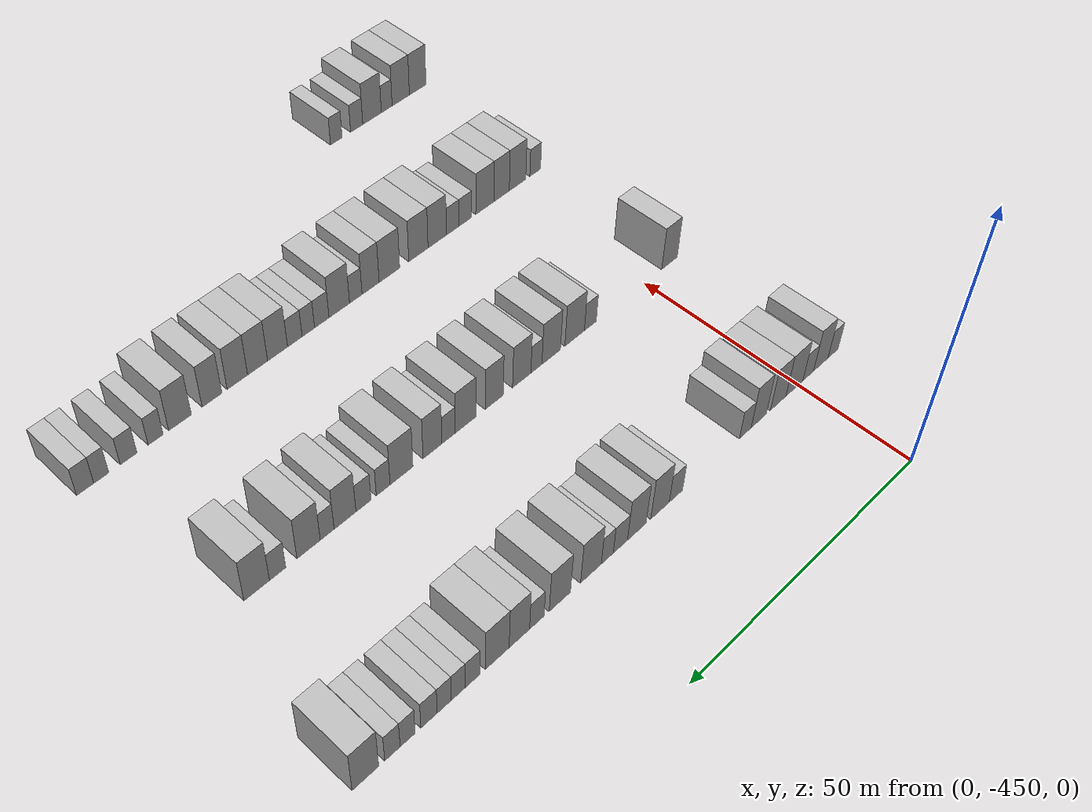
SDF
<sdf version="1.6">
 <world name="default">
  <model name="building_1">
   <static>1</static>
   <pose>25.0000 -458.7066 0 0.000000 0.000000 0.000000</pose>
   <link name="link">
    <pose>0 0 3.00 0 0 0</pose>
    <collision name="collision"><geometry><box><size>10.0000 2.5868 6.0000</size></box></geometry></collision>
    <visual name="visual">
     <cast_shadows>0</cast_shadows>
     <geometry><box><size>10.0000 2.5868 6.0000</size></box></geometry>
     <material>
      <script>
       <uri>model://HANNAS_wall/materials/scripts</uri>
       <uri>model://HANNAS_wall/materials/textures</uri>
       <name>vrc/HANNAS_wall</name>
      </script>
     </material>
    </visual>
   </link>
  </model>
  <model name="building_2">
   <static>1</static>
   <pose>25.0000 -455.5738 0 0.000000 0.000000 0.000000</pose>
   <link name="link">
    <pose>0 0 4.50 0 0 0</pose>
    <collision name="collision"><geometry><box><size>10.0000 3.6787 9.0000</size></box></geometry></collision>
    <visual name="visual">
     <cast_shadows>0</cast_shadows>
     <geometry><box><size>10.0000 3.6787 9.0000</size></box></geometry>
     <material>
      <script>
       <uri>model://HANNAS_wall/materials/scripts</uri>
       <uri>model://HANNAS_wall/materials/textures</uri>
       <name>vrc/HANNAS_wall</name>
      </script>
     </material>
    </visual>
   </link>
  </model>
  <model name="building_3">
   <static>1</static>
   <pose>25.0000 -452.3858 0 0.000000 0.000000 0.000000</pose>
   <link name="link">
    <pose>0 0 3.00 0 0 0</pose>
    <collision name="collision"><geometry><box><size>10.0000 2.6974 6.0000</size></box></geometry></collision>
    <visual name="visual">
     <cast_shadows>0</cast_shadows>
     <geometry><box><size>10.0000 2.6974 6.0000</size></box></geometry>
     <material>
      <script>
       <uri>model://HANNAS_wall/materials/scripts</uri>
       <uri>model://HANNAS_wall/materials/textures</uri>
       <name>vrc/HANNAS_wall</name>
      </script>
     </material>
    </visual>
   </link>
  </model>
  <model name="building_4">
   <static>1</static>
   <pose>25.0000 -448.9514 0 0.000000 0.000000 0.000000</pose>
   <link name="link">
    <pose>0 0 4.50 0 0 0</pose>
    <collision name="collision"><geometry><box><size>10.0000 4.1713 9.0000</size></box></geometry></collision>
    <visual name="visual">
     <cast_shadows>0</cast_shadows>
     <geometry><box><size>10.0000 4.1713 9.0000</size></box></geometry>
     <material>
      <script>
       <uri>model://HANNAS_wall/materials/scripts</uri>
       <uri>model://HANNAS_wall/materials/textures</uri>
       <name>vrc/HANNAS_wall</name>
      </script>
     </material>
    </visual>
   </link>
  </model>
  <model name="building_5">
   <static>1</static>
   <pose>25.0000 -444.9981 0 0.000000 0.000000 0.000000</pose>
   <link name="link">
    <pose>0 0 4.50 0 0 0</pose>
    <collision name="collision"><geometry><box><size>10.0000 3.7355 9.0000</size></box></geometry></collision>
    <visual name="visual">
     <cast_shadows>0</cast_shadows>
     <geometry><box><size>10.0000 3.7355 9.0000</size></box></geometry>
     <material>
      <script>
       <uri>model://HANNAS_wall/materials/scripts</uri>
       <uri>model://HANNAS_wall/materials/textures</uri>
       <name>vrc/HANNAS_wall</name>
      </script>
     </material>
    </visual>
   </link>
  </model>
  <model name="building_6">
   <static>1</static>
   <pose>25.0000 -440.3303 0 0.000000 0.000000 0.000000</pose>
   <link name="link">
    <pose>0 0 4.50 0 0 0</pose>
    <collision name="collision"><geometry><box><size>10.0000 3.6001 9.0000</size></box></geometry></collision>
    <visual name="visual">
     <cast_shadows>0</cast_shadows>
     <geometry><box><size>10.0000 3.6001 9.0000</size></box></geometry>
     <material>
      <script>
       <uri>model://HANNAS_wall/materials/scripts</uri>
       <uri>model://HANNAS_wall/materials/textures</uri>
       <name>vrc/HANNAS_wall</name>
      </script>
     </material>
    </visual>
   </link>
  </model>
  <model name="building_7">
   <static>1</static>
   <pose>25.0000 -437.1537 0 0.000000 0.000000 0.000000</pose>
   <link name="link">
    <pose>0 0 3.00 0 0 0</pose>
    <collision name="collision"><geometry><box><size>10.0000 2.7531 6.0000</size></box></geometry></collision>
    <visual name="visual">
     <cast_shadows>0</cast_shadows>
     <geometry><box><size>10.0000 2.7531 6.0000</size></box></geometry>
     <material>
      <script>
       <uri>model://HANNAS_wall/materials/scripts</uri>
       <uri>model://HANNAS_wall/materials/textures</uri>
       <name>vrc/HANNAS_wall</name>
      </script>
     </material>
    </visual>
   </link>
  </model>
  <model name="building_8">
   <static>1</static>
   <pose>25.0000 -421.3944 0 0.000000 0.000000 0.000000</pose>
   <link name="link">
    <pose>0 0 3.00 0 0 0</pose>
    <collision name="collision"><geometry><box><size>10.0000 2.9219 6.0000</size></box></geometry></collision>
    <visual name="visual">
     <cast_shadows>0</cast_shadows>
     <geometry><box><size>10.0000 2.9219 6.0000</size></box></geometry>
     <material>
      <script>
       <uri>model://HANNAS_wall/materials/scripts</uri>
       <uri>model://HANNAS_wall/materials/textures</uri>
       <name>vrc/HANNAS_wall</name>
      </script>
     </material>
    </visual>
   </link>
  </model>
  <model name="building_9">
   <static>1</static>
   <pose>25.0000 -417.9384 0 0.000000 0.000000 0.000000</pose>
   <link name="link">
    <pose>0 0 4.50 0 0 0</pose>
    <collision name="collision"><geometry><box><size>10.0000 3.9902 9.0000</size></box></geometry></collision>
    <visual name="visual">
     <cast_shadows>0</cast_shadows>
     <geometry><box><size>10.0000 3.9902 9.0000</size></box></geometry>
     <material>
      <script>
       <uri>model://HANNAS_wall/materials/scripts</uri>
       <uri>model://HANNAS_wall/materials/textures</uri>
       <name>vrc/HANNAS_wall</name>
      </script>
     </material>
    </visual>
   </link>
  </model>
  <model name="building_10">
   <static>1</static>
   <pose>25.0000 -412.9769 0 0.000000 0.000000 0.000000</pose>
   <link name="link">
    <pose>0 0 4.50 0 0 0</pose>
    <collision name="collision"><geometry><box><size>10.0000 3.9328 9.0000</size></box></geometry></collision>
    <visual name="visual">
     <cast_shadows>0</cast_shadows>
     <geometry><box><size>10.0000 3.9328 9.0000</size></box></geometry>
     <material>
      <script>
       <uri>model://HANNAS_wall/materials/scripts</uri>
       <uri>model://HANNAS_wall/materials/textures</uri>
       <name>vrc/HANNAS_wall</name>
      </script>
     </material>
    </visual>
   </link>
  </model>
  <model name="building_11">
   <static>1</static>
   <pose>25.0000 -409.5305 0 0.000000 0.000000 0.000000</pose>
   <link name="link">
    <pose>0 0 3.00 0 0 0</pose>
    <collision name="collision"><geometry><box><size>10.0000 2.9600 6.0000</size></box></geometry></collision>
    <visual name="visual">
     <cast_shadows>0</cast_shadows>
     <geometry><box><size>10.0000 2.9600 6.0000</size></box></geometry>
     <material>
      <script>
       <uri>model://HANNAS_wall/materials/scripts</uri>
       <uri>model://HANNAS_wall/materials/textures</uri>
       <name>vrc/HANNAS_wall</name>
      </script>
     </material>
    </visual>
   </link>
  </model>
  <model name="building_12">
   <static>1</static>
   <pose>25.0000 -406.8182 0 0.000000 0.000000 0.000000</pose>
   <link name="link">
    <pose>0 0 3.00 0 0 0</pose>
    <collision name="collision"><geometry><box><size>10.0000 2.4644 6.0000</size></box></geometry></collision>
    <visual name="visual">
     <cast_shadows>0</cast_shadows>
     <geometry><box><size>10.0000 2.4644 6.0000</size></box></geometry>
     <material>
      <script>
       <uri>model://HANNAS_wall/materials/scripts</uri>
       <uri>model://HANNAS_wall/materials/textures</uri>
       <name>vrc/HANNAS_wall</name>
      </script>
     </material>
    </visual>
   </link>
  </model>
  <model name="building_13">
   <static>1</static>
   <pose>25.0000 -403.4928 0 0.000000 0.000000 0.000000</pose>
   <link name="link">
    <pose>0 0 4.50 0 0 0</pose>
    <collision name="collision"><geometry><box><size>10.0000 4.1865 9.0000</size></box></geometry></collision>
    <visual name="visual">
     <cast_shadows>0</cast_shadows>
     <geometry><box><size>10.0000 4.1865 9.0000</size></box></geometry>
     <material>
      <script>
       <uri>model://HANNAS_wall/materials/scripts</uri>
       <uri>model://HANNAS_wall/materials/textures</uri>
       <name>vrc/HANNAS_wall</name>
      </script>
     </material>
    </visual>
   </link>
  </model>
  <model name="building_14">
   <static>1</static>
   <pose>25.0000 -397.3032 0 0.000000 0.000000 0.000000</pose>
   <link name="link">
    <pose>0 0 4.50 0 0 0</pose>
    <collision name="collision"><geometry><box><size>10.0000 4.1926 9.0000</size></box></geometry></collision>
    <visual name="visual">
     <cast_shadows>0</cast_shadows>
     <geometry><box><size>10.0000 4.1926 9.0000</size></box></geometry>
     <material>
      <script>
       <uri>model://HANNAS_wall/materials/scripts</uri>
       <uri>model://HANNAS_wall/materials/textures</uri>
       <name>vrc/HANNAS_wall</name>
      </script>
     </material>
    </visual>
   </link>
  </model>
  <model name="building_15">
   <static>1</static>
   <pose>25.0000 -392.8134 0 0.000000 0.000000 0.000000</pose>
   <link name="link">
    <pose>0 0 3.00 0 0 0</pose>
    <collision name="collision"><geometry><box><size>10.0000 2.7870 6.0000</size></box></geometry></collision>
    <visual name="visual">
     <cast_shadows>0</cast_shadows>
     <geometry><box><size>10.0000 2.7870 6.0000</size></box></geometry>
     <material>
      <script>
       <uri>model://HANNAS_wall/materials/scripts</uri>
       <uri>model://HANNAS_wall/materials/textures</uri>
       <name>vrc/HANNAS_wall</name>
      </script>
     </material>
    </visual>
   </link>
  </model>
  <model name="building_16">
   <static>1</static>
   <pose>25.0000 -389.4823 0 0.000000 0.000000 0.000000</pose>
   <link name="link">
    <pose>0 0 4.50 0 0 0</pose>
    <collision name="collision"><geometry><box><size>10.0000 3.8753 9.0000</size></box></geometry></collision>
    <visual name="visual">
     <cast_shadows>0</cast_shadows>
     <geometry><box><size>10.0000 3.8753 9.0000</size></box></geometry>
     <material>
      <script>
       <uri>model://HANNAS_wall/materials/scripts</uri>
       <uri>model://HANNAS_wall/materials/textures</uri>
       <name>vrc/HANNAS_wall</name>
      </script>
     </material>
    </visual>
   </link>
  </model>
  <model name="building_17">
   <static>1</static>
   <pose>25.0000 -385.3470 0 0.000000 0.000000 0.000000</pose>
   <link name="link">
    <pose>0 0 4.50 0 0 0</pose>
    <collision name="collision"><geometry><box><size>10.0000 4.3953 9.0000</size></box></geometry></collision>
    <visual name="visual">
     <cast_shadows>0</cast_shadows>
     <geometry><box><size>10.0000 4.3953 9.0000</size></box></geometry>
     <material>
      <script>
       <uri>model://HANNAS_wall/materials/scripts</uri>
       <uri>model://HANNAS_wall/materials/textures</uri>
       <name>vrc/HANNAS_wall</name>
      </script>
     </material>
    </visual>
   </link>
  </model>
  <model name="building_18">
   <static>1</static>
   <pose>25.0000 -380.8037 0 0.000000 0.000000 0.000000</pose>
   <link name="link">
    <pose>0 0 3.00 0 0 0</pose>
    <collision name="collision"><geometry><box><size>10.0000 2.6913 6.0000</size></box></geometry></collision>
    <visual name="visual">
     <cast_shadows>0</cast_shadows>
     <geometry><box><size>10.0000 2.6913 6.0000</size></box></geometry>
     <material>
      <script>
       <uri>model://HANNAS_wall/materials/scripts</uri>
       <uri>model://HANNAS_wall/materials/textures</uri>
       <name>vrc/HANNAS_wall</name>
      </script>
     </material>
    </visual>
   </link>
  </model>
  <model name="building_19">
   <static>1</static>
   <pose>25.0000 -378.2091 0 0.000000 0.000000 0.000000</pose>
   <link name="link">
    <pose>0 0 3.00 0 0 0</pose>
    <collision name="collision"><geometry><box><size>10.0000 2.4979 6.0000</size></box></geometry></collision>
    <visual name="visual">
     <cast_shadows>0</cast_shadows>
     <geometry><box><size>10.0000 2.4979 6.0000</size></box></geometry>
     <material>
      <script>
       <uri>model://HANNAS_wall/materials/scripts</uri>
       <uri>model://HANNAS_wall/materials/textures</uri>
       <name>vrc/HANNAS_wall</name>
      </script>
     </material>
    </visual>
   </link>
  </model>
  <model name="building_20">
   <static>1</static>
   <pose>25.0000 -375.7072 0 0.000000 0.000000 0.000000</pose>
   <link name="link">
    <pose>0 0 3.00 0 0 0</pose>
    <collision name="collision"><geometry><box><size>10.0000 2.5059 6.0000</size></box></geometry></collision>
    <visual name="visual">
     <cast_shadows>0</cast_shadows>
     <geometry><box><size>10.0000 2.5059 6.0000</size></box></geometry>
     <material>
      <script>
       <uri>model://HANNAS_wall/materials/scripts</uri>
       <uri>model://HANNAS_wall/materials/textures</uri>
       <name>vrc/HANNAS_wall</name>
      </script>
     </material>
    </visual>
   </link>
  </model>
  <model name="building_21">
   <static>1</static>
   <pose>25.0000 -373.0271 0 0.000000 0.000000 0.000000</pose>
   <link name="link">
    <pose>0 0 3.00 0 0 0</pose>
    <collision name="collision"><geometry><box><size>10.0000 2.8543 6.0000</size></box></geometry></collision>
    <visual name="visual">
     <cast_shadows>0</cast_shadows>
     <geometry><box><size>10.0000 2.8543 6.0000</size></box></geometry>
     <material>
      <script>
       <uri>model://HANNAS_wall/materials/scripts</uri>
       <uri>model://HANNAS_wall/materials/textures</uri>
       <name>vrc/HANNAS_wall</name>
      </script>
     </material>
    </visual>
   </link>
  </model>
  <model name="building_22">
   <static>1</static>
   <pose>25.0000 -369.3233 0 0.000000 0.000000 0.000000</pose>
   <link name="link">
    <pose>0 0 3.00 0 0 0</pose>
    <collision name="collision"><geometry><box><size>10.0000 2.5532 6.0000</size></box></geometry></collision>
    <visual name="visual">
     <cast_shadows>0</cast_shadows>
     <geometry><box><size>10.0000 2.5532 6.0000</size></box></geometry>
     <material>
      <script>
       <uri>model://HANNAS_wall/materials/scripts</uri>
       <uri>model://HANNAS_wall/materials/textures</uri>
       <name>vrc/HANNAS_wall</name>
      </script>
     </material>
    </visual>
   </link>
  </model>
  <model name="building_23">
   <static>1</static>
   <pose>25.0000 -366.7375 0 0.000000 0.000000 0.000000</pose>
   <link name="link">
    <pose>0 0 3.00 0 0 0</pose>
    <collision name="collision"><geometry><box><size>10.0000 2.6186 6.0000</size></box></geometry></collision>
    <visual name="visual">
     <cast_shadows>0</cast_shadows>
     <geometry><box><size>10.0000 2.6186 6.0000</size></box></geometry>
     <material>
      <script>
       <uri>model://HANNAS_wall/materials/scripts</uri>
       <uri>model://HANNAS_wall/materials/textures</uri>
       <name>vrc/HANNAS_wall</name>
      </script>
     </material>
    </visual>
   </link>
  </model>
  <model name="building_24">
   <static>1</static>
   <pose>25.0000 -362.2098 0 0.000000 0.000000 0.000000</pose>
   <link name="link">
    <pose>0 0 4.50 0 0 0</pose>
    <collision name="collision"><geometry><box><size>10.0000 4.4368 9.0000</size></box></geometry></collision>
    <visual name="visual">
     <cast_shadows>0</cast_shadows>
     <geometry><box><size>10.0000 4.4368 9.0000</size></box></geometry>
     <material>
      <script>
       <uri>model://HANNAS_wall/materials/scripts</uri>
       <uri>model://HANNAS_wall/materials/textures</uri>
       <name>vrc/HANNAS_wall</name>
      </script>
     </material>
    </visual>
   </link>
  </model>
  <model name="building_229">
   <static>1</static>
   <pose>55.0000 -456.0735 0 0.000000 0.000000 0.000000</pose>
   <link name="link">
    <pose>0 0 4.50 0 0 0</pose>
    <collision name="collision"><geometry><box><size>10.0000 3.8530 9.0000</size></box></geometry></collision>
    <visual name="visual">
     <cast_shadows>0</cast_shadows>
     <geometry><box><size>10.0000 3.8530 9.0000</size></box></geometry>
     <material>
      <script>
       <uri>model://HANNAS_wall/materials/scripts</uri>
       <uri>model://HANNAS_wall/materials/textures</uri>
       <name>vrc/HANNAS_wall</name>
      </script>
     </material>
    </visual>
   </link>
  </model>
  <model name="building_230">
   <static>1</static>
   <pose>55.0000 -437.0351 0 0.000000 0.000000 0.000000</pose>
   <link name="link">
    <pose>0 0 3.00 0 0 0</pose>
    <collision name="collision"><geometry><box><size>10.0000 2.7413 6.0000</size></box></geometry></collision>
    <visual name="visual">
     <cast_shadows>0</cast_shadows>
     <geometry><box><size>10.0000 2.7413 6.0000</size></box></geometry>
     <material>
      <script>
       <uri>model://HANNAS_wall/materials/scripts</uri>
       <uri>model://HANNAS_wall/materials/textures</uri>
       <name>vrc/HANNAS_wall</name>
      </script>
     </material>
    </visual>
   </link>
  </model>
  <model name="building_231">
   <static>1</static>
   <pose>55.0000 -433.4334 0 0.000000 0.000000 0.000000</pose>
   <link name="link">
    <pose>0 0 4.50 0 0 0</pose>
    <collision name="collision"><geometry><box><size>10.0000 4.4622 9.0000</size></box></geometry></collision>
    <visual name="visual">
     <cast_shadows>0</cast_shadows>
     <geometry><box><size>10.0000 4.4622 9.0000</size></box></geometry>
     <material>
      <script>
       <uri>model://HANNAS_wall/materials/scripts</uri>
       <uri>model://HANNAS_wall/materials/textures</uri>
       <name>vrc/HANNAS_wall</name>
      </script>
     </material>
    </visual>
   </link>
  </model>
  <model name="building_232">
   <static>1</static>
   <pose>55.0000 -428.1297 0 0.000000 0.000000 0.000000</pose>
   <link name="link">
    <pose>0 0 4.50 0 0 0</pose>
    <collision name="collision"><geometry><box><size>10.0000 4.1451 9.0000</size></box></geometry></collision>
    <visual name="visual">
     <cast_shadows>0</cast_shadows>
     <geometry><box><size>10.0000 4.1451 9.0000</size></box></geometry>
     <material>
      <script>
       <uri>model://HANNAS_wall/materials/scripts</uri>
       <uri>model://HANNAS_wall/materials/textures</uri>
       <name>vrc/HANNAS_wall</name>
      </script>
     </material>
    </visual>
   </link>
  </model>
  <model name="building_233">
   <static>1</static>
   <pose>55.0000 -424.8403 0 0.000000 0.000000 0.000000</pose>
   <link name="link">
    <pose>0 0 3.00 0 0 0</pose>
    <collision name="collision"><geometry><box><size>10.0000 2.4337 6.0000</size></box></geometry></collision>
    <visual name="visual">
     <cast_shadows>0</cast_shadows>
     <geometry><box><size>10.0000 2.4337 6.0000</size></box></geometry>
     <material>
      <script>
       <uri>model://HANNAS_wall/materials/scripts</uri>
       <uri>model://HANNAS_wall/materials/textures</uri>
       <name>vrc/HANNAS_wall</name>
      </script>
     </material>
    </visual>
   </link>
  </model>
  <model name="building_234">
   <static>1</static>
   <pose>55.0000 -421.6321 0 0.000000 0.000000 0.000000</pose>
   <link name="link">
    <pose>0 0 4.50 0 0 0</pose>
    <collision name="collision"><geometry><box><size>10.0000 3.9828 9.0000</size></box></geometry></collision>
    <visual name="visual">
     <cast_shadows>0</cast_shadows>
     <geometry><box><size>10.0000 3.9828 9.0000</size></box></geometry>
     <material>
      <script>
       <uri>model://HANNAS_wall/materials/scripts</uri>
       <uri>model://HANNAS_wall/materials/textures</uri>
       <name>vrc/HANNAS_wall</name>
      </script>
     </material>
    </visual>
   </link>
  </model>
  <model name="building_235">
   <static>1</static>
   <pose>55.0000 -415.7391 0 0.000000 0.000000 0.000000</pose>
   <link name="link">
    <pose>0 0 4.50 0 0 0</pose>
    <collision name="collision"><geometry><box><size>10.0000 3.8032 9.0000</size></box></geometry></collision>
    <visual name="visual">
     <cast_shadows>0</cast_shadows>
     <geometry><box><size>10.0000 3.8032 9.0000</size></box></geometry>
     <material>
      <script>
       <uri>model://HANNAS_wall/materials/scripts</uri>
       <uri>model://HANNAS_wall/materials/textures</uri>
       <name>vrc/HANNAS_wall</name>
      </script>
     </material>
    </visual>
   </link>
  </model>
  <model name="building_236">
   <static>1</static>
   <pose>55.0000 -409.7206 0 0.000000 0.000000 0.000000</pose>
   <link name="link">
    <pose>0 0 4.50 0 0 0</pose>
    <collision name="collision"><geometry><box><size>10.0000 4.2340 9.0000</size></box></geometry></collision>
    <visual name="visual">
     <cast_shadows>0</cast_shadows>
     <geometry><box><size>10.0000 4.2340 9.0000</size></box></geometry>
     <material>
      <script>
       <uri>model://HANNAS_wall/materials/scripts</uri>
       <uri>model://HANNAS_wall/materials/textures</uri>
       <name>vrc/HANNAS_wall</name>
      </script>
     </material>
    </visual>
   </link>
  </model>
  <model name="building_237">
   <static>1</static>
   <pose>55.0000 -406.2357 0 0.000000 0.000000 0.000000</pose>
   <link name="link">
    <pose>0 0 3.00 0 0 0</pose>
    <collision name="collision"><geometry><box><size>10.0000 2.7357 6.0000</size></box></geometry></collision>
    <visual name="visual">
     <cast_shadows>0</cast_shadows>
     <geometry><box><size>10.0000 2.7357 6.0000</size></box></geometry>
     <material>
      <script>
       <uri>model://HANNAS_wall/materials/scripts</uri>
       <uri>model://HANNAS_wall/materials/textures</uri>
       <name>vrc/HANNAS_wall</name>
      </script>
     </material>
    </visual>
   </link>
  </model>
  <model name="building_238">
   <static>1</static>
   <pose>55.0000 -402.9765 0 0.000000 0.000000 0.000000</pose>
   <link name="link">
    <pose>0 0 4.50 0 0 0</pose>
    <collision name="collision"><geometry><box><size>10.0000 3.7827 9.0000</size></box></geometry></collision>
    <visual name="visual">
     <cast_shadows>0</cast_shadows>
     <geometry><box><size>10.0000 3.7827 9.0000</size></box></geometry>
     <material>
      <script>
       <uri>model://HANNAS_wall/materials/scripts</uri>
       <uri>model://HANNAS_wall/materials/textures</uri>
       <name>vrc/HANNAS_wall</name>
      </script>
     </material>
    </visual>
   </link>
  </model>
  <model name="building_239">
   <static>1</static>
   <pose>55.0000 -396.8434 0 0.000000 0.000000 0.000000</pose>
   <link name="link">
    <pose>0 0 4.50 0 0 0</pose>
    <collision name="collision"><geometry><box><size>10.0000 4.4836 9.0000</size></box></geometry></collision>
    <visual name="visual">
     <cast_shadows>0</cast_shadows>
     <geometry><box><size>10.0000 4.4836 9.0000</size></box></geometry>
     <material>
      <script>
       <uri>model://HANNAS_wall/materials/scripts</uri>
       <uri>model://HANNAS_wall/materials/textures</uri>
       <name>vrc/HANNAS_wall</name>
      </script>
     </material>
    </visual>
   </link>
  </model>
  <model name="building_240">
   <static>1</static>
   <pose>55.0000 -393.2731 0 0.000000 0.000000 0.000000</pose>
   <link name="link">
    <pose>0 0 3.00 0 0 0</pose>
    <collision name="collision"><geometry><box><size>10.0000 2.6569 6.0000</size></box></geometry></collision>
    <visual name="visual">
     <cast_shadows>0</cast_shadows>
     <geometry><box><size>10.0000 2.6569 6.0000</size></box></geometry>
     <material>
      <script>
       <uri>model://HANNAS_wall/materials/scripts</uri>
       <uri>model://HANNAS_wall/materials/textures</uri>
       <name>vrc/HANNAS_wall</name>
      </script>
     </material>
    </visual>
   </link>
  </model>
  <model name="building_241">
   <static>1</static>
   <pose>55.0000 -389.5162 0 0.000000 0.000000 0.000000</pose>
   <link name="link">
    <pose>0 0 3.00 0 0 0</pose>
    <collision name="collision"><geometry><box><size>10.0000 2.8569 6.0000</size></box></geometry></collision>
    <visual name="visual">
     <cast_shadows>0</cast_shadows>
     <geometry><box><size>10.0000 2.8569 6.0000</size></box></geometry>
     <material>
      <script>
       <uri>model://HANNAS_wall/materials/scripts</uri>
       <uri>model://HANNAS_wall/materials/textures</uri>
       <name>vrc/HANNAS_wall</name>
      </script>
     </material>
    </visual>
   </link>
  </model>
  <model name="building_242">
   <static>1</static>
   <pose>55.0000 -386.0466 0 0.000000 0.000000 0.000000</pose>
   <link name="link">
    <pose>0 0 4.50 0 0 0</pose>
    <collision name="collision"><geometry><box><size>10.0000 4.0823 9.0000</size></box></geometry></collision>
    <visual name="visual">
     <cast_shadows>0</cast_shadows>
     <geometry><box><size>10.0000 4.0823 9.0000</size></box></geometry>
     <material>
      <script>
       <uri>model://HANNAS_wall/materials/scripts</uri>
       <uri>model://HANNAS_wall/materials/textures</uri>
       <name>vrc/HANNAS_wall</name>
      </script>
     </material>
    </visual>
   </link>
  </model>
  <model name="building_243">
   <static>1</static>
   <pose>55.0000 -382.7339 0 0.000000 0.000000 0.000000</pose>
   <link name="link">
    <pose>0 0 3.00 0 0 0</pose>
    <collision name="collision"><geometry><box><size>10.0000 2.5432 6.0000</size></box></geometry></collision>
    <visual name="visual">
     <cast_shadows>0</cast_shadows>
     <geometry><box><size>10.0000 2.5432 6.0000</size></box></geometry>
     <material>
      <script>
       <uri>model://HANNAS_wall/materials/scripts</uri>
       <uri>model://HANNAS_wall/materials/textures</uri>
       <name>vrc/HANNAS_wall</name>
      </script>
     </material>
    </visual>
   </link>
  </model>
  <model name="building_244">
   <static>1</static>
   <pose>55.0000 -379.3539 0 0.000000 0.000000 0.000000</pose>
   <link name="link">
    <pose>0 0 4.50 0 0 0</pose>
    <collision name="collision"><geometry><box><size>10.0000 4.2167 9.0000</size></box></geometry></collision>
    <visual name="visual">
     <cast_shadows>0</cast_shadows>
     <geometry><box><size>10.0000 4.2167 9.0000</size></box></geometry>
     <material>
      <script>
       <uri>model://HANNAS_wall/materials/scripts</uri>
       <uri>model://HANNAS_wall/materials/textures</uri>
       <name>vrc/HANNAS_wall</name>
      </script>
     </material>
    </visual>
   </link>
  </model>
  <model name="building_245">
   <static>1</static>
   <pose>55.0000 -373.8124 0 0.000000 0.000000 0.000000</pose>
   <link name="link">
    <pose>0 0 3.00 0 0 0</pose>
    <collision name="collision"><geometry><box><size>10.0000 2.8664 6.0000</size></box></geometry></collision>
    <visual name="visual">
     <cast_shadows>0</cast_shadows>
     <geometry><box><size>10.0000 2.8664 6.0000</size></box></geometry>
     <material>
      <script>
       <uri>model://HANNAS_wall/materials/scripts</uri>
       <uri>model://HANNAS_wall/materials/textures</uri>
       <name>vrc/HANNAS_wall</name>
      </script>
     </material>
    </visual>
   </link>
  </model>
  <model name="building_246">
   <static>1</static>
   <pose>55.0000 -370.1532 0 0.000000 0.000000 0.000000</pose>
   <link name="link">
    <pose>0 0 4.50 0 0 0</pose>
    <collision name="collision"><geometry><box><size>10.0000 4.4521 9.0000</size></box></geometry></collision>
    <visual name="visual">
     <cast_shadows>0</cast_shadows>
     <geometry><box><size>10.0000 4.4521 9.0000</size></box></geometry>
     <material>
      <script>
       <uri>model://HANNAS_wall/materials/scripts</uri>
       <uri>model://HANNAS_wall/materials/textures</uri>
       <name>vrc/HANNAS_wall</name>
      </script>
     </material>
    </visual>
   </link>
  </model>
  <model name="building_451">
   <static>1</static>
   <pose>85.0000 -456.6678 0 0.000000 0.000000 0.000000</pose>
   <link name="link">
    <pose>0 0 3.00 0 0 0</pose>
    <collision name="collision"><geometry><box><size>10.0000 2.6645 6.0000</size></box></geometry></collision>
    <visual name="visual">
     <cast_shadows>0</cast_shadows>
     <geometry><box><size>10.0000 2.6645 6.0000</size></box></geometry>
     <material>
      <script>
       <uri>model://HANNAS_wall/materials/scripts</uri>
       <uri>model://HANNAS_wall/materials/textures</uri>
       <name>vrc/HANNAS_wall</name>
      </script>
     </material>
    </visual>
   </link>
  </model>
  <model name="building_452">
   <static>1</static>
   <pose>85.0000 -452.3245 0 0.000000 0.000000 0.000000</pose>
   <link name="link">
    <pose>0 0 4.50 0 0 0</pose>
    <collision name="collision"><geometry><box><size>10.0000 4.0221 9.0000</size></box></geometry></collision>
    <visual name="visual">
     <cast_shadows>0</cast_shadows>
     <geometry><box><size>10.0000 4.0221 9.0000</size></box></geometry>
     <material>
      <script>
       <uri>model://HANNAS_wall/materials/scripts</uri>
       <uri>model://HANNAS_wall/materials/textures</uri>
       <name>vrc/HANNAS_wall</name>
      </script>
     </material>
    </visual>
   </link>
  </model>
  <model name="building_453">
   <static>1</static>
   <pose>85.0000 -448.4547 0 0.000000 0.000000 0.000000</pose>
   <link name="link">
    <pose>0 0 4.50 0 0 0</pose>
    <collision name="collision"><geometry><box><size>10.0000 3.7173 9.0000</size></box></geometry></collision>
    <visual name="visual">
     <cast_shadows>0</cast_shadows>
     <geometry><box><size>10.0000 3.7173 9.0000</size></box></geometry>
     <material>
      <script>
       <uri>model://HANNAS_wall/materials/scripts</uri>
       <uri>model://HANNAS_wall/materials/textures</uri>
       <name>vrc/HANNAS_wall</name>
      </script>
     </material>
    </visual>
   </link>
  </model>
  <model name="building_454">
   <static>1</static>
   <pose>85.0000 -444.4459 0 0.000000 0.000000 0.000000</pose>
   <link name="link">
    <pose>0 0 4.50 0 0 0</pose>
    <collision name="collision"><geometry><box><size>10.0000 4.3004 9.0000</size></box></geometry></collision>
    <visual name="visual">
     <cast_shadows>0</cast_shadows>
     <geometry><box><size>10.0000 4.3004 9.0000</size></box></geometry>
     <material>
      <script>
       <uri>model://HANNAS_wall/materials/scripts</uri>
       <uri>model://HANNAS_wall/materials/textures</uri>
       <name>vrc/HANNAS_wall</name>
      </script>
     </material>
    </visual>
   </link>
  </model>
  <model name="building_455">
   <static>1</static>
   <pose>85.0000 -439.8222 0 0.000000 0.000000 0.000000</pose>
   <link name="link">
    <pose>0 0 3.00 0 0 0</pose>
    <collision name="collision"><geometry><box><size>10.0000 2.9471 6.0000</size></box></geometry></collision>
    <visual name="visual">
     <cast_shadows>0</cast_shadows>
     <geometry><box><size>10.0000 2.9471 6.0000</size></box></geometry>
     <material>
      <script>
       <uri>model://HANNAS_wall/materials/scripts</uri>
       <uri>model://HANNAS_wall/materials/textures</uri>
       <name>vrc/HANNAS_wall</name>
      </script>
     </material>
    </visual>
   </link>
  </model>
  <model name="building_456">
   <static>1</static>
   <pose>85.0000 -436.9221 0 0.000000 0.000000 0.000000</pose>
   <link name="link">
    <pose>0 0 3.00 0 0 0</pose>
    <collision name="collision"><geometry><box><size>10.0000 2.8531 6.0000</size></box></geometry></collision>
    <visual name="visual">
     <cast_shadows>0</cast_shadows>
     <geometry><box><size>10.0000 2.8531 6.0000</size></box></geometry>
     <material>
      <script>
       <uri>model://HANNAS_wall/materials/scripts</uri>
       <uri>model://HANNAS_wall/materials/textures</uri>
       <name>vrc/HANNAS_wall</name>
      </script>
     </material>
    </visual>
   </link>
  </model>
  <model name="building_457">
   <static>1</static>
   <pose>85.0000 -433.4011 0 0.000000 0.000000 0.000000</pose>
   <link name="link">
    <pose>0 0 4.50 0 0 0</pose>
    <collision name="collision"><geometry><box><size>10.0000 4.1889 9.0000</size></box></geometry></collision>
    <visual name="visual">
     <cast_shadows>0</cast_shadows>
     <geometry><box><size>10.0000 4.1889 9.0000</size></box></geometry>
     <material>
      <script>
       <uri>model://HANNAS_wall/materials/scripts</uri>
       <uri>model://HANNAS_wall/materials/textures</uri>
       <name>vrc/HANNAS_wall</name>
      </script>
     </material>
    </visual>
   </link>
  </model>
  <model name="building_458">
   <static>1</static>
   <pose>85.0000 -429.1492 0 0.000000 0.000000 0.000000</pose>
   <link name="link">
    <pose>0 0 4.50 0 0 0</pose>
    <collision name="collision"><geometry><box><size>10.0000 4.3148 9.0000</size></box></geometry></collision>
    <visual name="visual">
     <cast_shadows>0</cast_shadows>
     <geometry><box><size>10.0000 4.3148 9.0000</size></box></geometry>
     <material>
      <script>
       <uri>model://HANNAS_wall/materials/scripts</uri>
       <uri>model://HANNAS_wall/materials/textures</uri>
       <name>vrc/HANNAS_wall</name>
      </script>
     </material>
    </visual>
   </link>
  </model>
  <model name="building_459">
   <static>1</static>
   <pose>85.0000 -422.7486 0 0.000000 0.000000 0.000000</pose>
   <link name="link">
    <pose>0 0 4.50 0 0 0</pose>
    <collision name="collision"><geometry><box><size>10.0000 4.4864 9.0000</size></box></geometry></collision>
    <visual name="visual">
     <cast_shadows>0</cast_shadows>
     <geometry><box><size>10.0000 4.4864 9.0000</size></box></geometry>
     <material>
      <script>
       <uri>model://HANNAS_wall/materials/scripts</uri>
       <uri>model://HANNAS_wall/materials/textures</uri>
       <name>vrc/HANNAS_wall</name>
      </script>
     </material>
    </visual>
   </link>
  </model>
  <model name="building_460">
   <static>1</static>
   <pose>85.0000 -418.6689 0 0.000000 0.000000 0.000000</pose>
   <link name="link">
    <pose>0 0 4.50 0 0 0</pose>
    <collision name="collision"><geometry><box><size>10.0000 3.6731 9.0000</size></box></geometry></collision>
    <visual name="visual">
     <cast_shadows>0</cast_shadows>
     <geometry><box><size>10.0000 3.6731 9.0000</size></box></geometry>
     <material>
      <script>
       <uri>model://HANNAS_wall/materials/scripts</uri>
       <uri>model://HANNAS_wall/materials/textures</uri>
       <name>vrc/HANNAS_wall</name>
      </script>
     </material>
    </visual>
   </link>
  </model>
  <model name="building_461">
   <static>1</static>
   <pose>85.0000 -415.5051 0 0.000000 0.000000 0.000000</pose>
   <link name="link">
    <pose>0 0 3.00 0 0 0</pose>
    <collision name="collision"><geometry><box><size>10.0000 2.6544 6.0000</size></box></geometry></collision>
    <visual name="visual">
     <cast_shadows>0</cast_shadows>
     <geometry><box><size>10.0000 2.6544 6.0000</size></box></geometry>
     <material>
      <script>
       <uri>model://HANNAS_wall/materials/scripts</uri>
       <uri>model://HANNAS_wall/materials/textures</uri>
       <name>vrc/HANNAS_wall</name>
      </script>
     </material>
    </visual>
   </link>
  </model>
  <model name="building_462">
   <static>1</static>
   <pose>85.0000 -412.0289 0 0.000000 0.000000 0.000000</pose>
   <link name="link">
    <pose>0 0 4.50 0 0 0</pose>
    <collision name="collision"><geometry><box><size>10.0000 4.2980 9.0000</size></box></geometry></collision>
    <visual name="visual">
     <cast_shadows>0</cast_shadows>
     <geometry><box><size>10.0000 4.2980 9.0000</size></box></geometry>
     <material>
      <script>
       <uri>model://HANNAS_wall/materials/scripts</uri>
       <uri>model://HANNAS_wall/materials/textures</uri>
       <name>vrc/HANNAS_wall</name>
      </script>
     </material>
    </visual>
   </link>
  </model>
  <model name="building_463">
   <static>1</static>
   <pose>85.0000 -408.3924 0 0.000000 0.000000 0.000000</pose>
   <link name="link">
    <pose>0 0 3.00 0 0 0</pose>
    <collision name="collision"><geometry><box><size>10.0000 2.9751 6.0000</size></box></geometry></collision>
    <visual name="visual">
     <cast_shadows>0</cast_shadows>
     <geometry><box><size>10.0000 2.9751 6.0000</size></box></geometry>
     <material>
      <script>
       <uri>model://HANNAS_wall/materials/scripts</uri>
       <uri>model://HANNAS_wall/materials/textures</uri>
       <name>vrc/HANNAS_wall</name>
      </script>
     </material>
    </visual>
   </link>
  </model>
  <model name="building_464">
   <static>1</static>
   <pose>85.0000 -405.6403 0 0.000000 0.000000 0.000000</pose>
   <link name="link">
    <pose>0 0 3.00 0 0 0</pose>
    <collision name="collision"><geometry><box><size>10.0000 2.5290 6.0000</size></box></geometry></collision>
    <visual name="visual">
     <cast_shadows>0</cast_shadows>
     <geometry><box><size>10.0000 2.5290 6.0000</size></box></geometry>
     <material>
      <script>
       <uri>model://HANNAS_wall/materials/scripts</uri>
       <uri>model://HANNAS_wall/materials/textures</uri>
       <name>vrc/HANNAS_wall</name>
      </script>
     </material>
    </visual>
   </link>
  </model>
  <model name="building_465">
   <static>1</static>
   <pose>85.0000 -402.8973 0 0.000000 0.000000 0.000000</pose>
   <link name="link">
    <pose>0 0 3.00 0 0 0</pose>
    <collision name="collision"><geometry><box><size>10.0000 2.9571 6.0000</size></box></geometry></collision>
    <visual name="visual">
     <cast_shadows>0</cast_shadows>
     <geometry><box><size>10.0000 2.9571 6.0000</size></box></geometry>
     <material>
      <script>
       <uri>model://HANNAS_wall/materials/scripts</uri>
       <uri>model://HANNAS_wall/materials/textures</uri>
       <name>vrc/HANNAS_wall</name>
      </script>
     </material>
    </visual>
   </link>
  </model>
  <model name="building_466">
   <static>1</static>
   <pose>85.0000 -399.4324 0 0.000000 0.000000 0.000000</pose>
   <link name="link">
    <pose>0 0 4.50 0 0 0</pose>
    <collision name="collision"><geometry><box><size>10.0000 3.9728 9.0000</size></box></geometry></collision>
    <visual name="visual">
     <cast_shadows>0</cast_shadows>
     <geometry><box><size>10.0000 3.9728 9.0000</size></box></geometry>
     <material>
      <script>
       <uri>model://HANNAS_wall/materials/scripts</uri>
       <uri>model://HANNAS_wall/materials/textures</uri>
       <name>vrc/HANNAS_wall</name>
      </script>
     </material>
    </visual>
   </link>
  </model>
  <model name="building_467">
   <static>1</static>
   <pose>85.0000 -395.4899 0 0.000000 0.000000 0.000000</pose>
   <link name="link">
    <pose>0 0 4.50 0 0 0</pose>
    <collision name="collision"><geometry><box><size>10.0000 3.9123 9.0000</size></box></geometry></collision>
    <visual name="visual">
     <cast_shadows>0</cast_shadows>
     <geometry><box><size>10.0000 3.9123 9.0000</size></box></geometry>
     <material>
      <script>
       <uri>model://HANNAS_wall/materials/scripts</uri>
       <uri>model://HANNAS_wall/materials/textures</uri>
       <name>vrc/HANNAS_wall</name>
      </script>
     </material>
    </visual>
   </link>
  </model>
  <model name="building_468">
   <static>1</static>
   <pose>85.0000 -391.5585 0 0.000000 0.000000 0.000000</pose>
   <link name="link">
    <pose>0 0 4.50 0 0 0</pose>
    <collision name="collision"><geometry><box><size>10.0000 3.9504 9.0000</size></box></geometry></collision>
    <visual name="visual">
     <cast_shadows>0</cast_shadows>
     <geometry><box><size>10.0000 3.9504 9.0000</size></box></geometry>
     <material>
      <script>
       <uri>model://HANNAS_wall/materials/scripts</uri>
       <uri>model://HANNAS_wall/materials/textures</uri>
       <name>vrc/HANNAS_wall</name>
      </script>
     </material>
    </visual>
   </link>
  </model>
  <model name="building_469">
   <static>1</static>
   <pose>85.0000 -386.7161 0 0.000000 0.000000 0.000000</pose>
   <link name="link">
    <pose>0 0 4.50 0 0 0</pose>
    <collision name="collision"><geometry><box><size>10.0000 3.7344 9.0000</size></box></geometry></collision>
    <visual name="visual">
     <cast_shadows>0</cast_shadows>
     <geometry><box><size>10.0000 3.7344 9.0000</size></box></geometry>
     <material>
      <script>
       <uri>model://HANNAS_wall/materials/scripts</uri>
       <uri>model://HANNAS_wall/materials/textures</uri>
       <name>vrc/HANNAS_wall</name>
      </script>
     </material>
    </visual>
   </link>
  </model>
  <model name="building_470">
   <static>1</static>
   <pose>85.0000 -380.7545 0 0.000000 0.000000 0.000000</pose>
   <link name="link">
    <pose>0 0 4.50 0 0 0</pose>
    <collision name="collision"><geometry><box><size>10.0000 4.1889 9.0000</size></box></geometry></collision>
    <visual name="visual">
     <cast_shadows>0</cast_shadows>
     <geometry><box><size>10.0000 4.1889 9.0000</size></box></geometry>
     <material>
      <script>
       <uri>model://HANNAS_wall/materials/scripts</uri>
       <uri>model://HANNAS_wall/materials/textures</uri>
       <name>vrc/HANNAS_wall</name>
      </script>
     </material>
    </visual>
   </link>
  </model>
  <model name="building_471">
   <static>1</static>
   <pose>85.0000 -376.3036 0 0.000000 0.000000 0.000000</pose>
   <link name="link">
    <pose>0 0 3.00 0 0 0</pose>
    <collision name="collision"><geometry><box><size>10.0000 2.7128 6.0000</size></box></geometry></collision>
    <visual name="visual">
     <cast_shadows>0</cast_shadows>
     <geometry><box><size>10.0000 2.7128 6.0000</size></box></geometry>
     <material>
      <script>
       <uri>model://HANNAS_wall/materials/scripts</uri>
       <uri>model://HANNAS_wall/materials/textures</uri>
       <name>vrc/HANNAS_wall</name>
      </script>
     </material>
    </visual>
   </link>
  </model>
  <model name="building_472">
   <static>1</static>
   <pose>85.0000 -371.4637 0 0.000000 0.000000 0.000000</pose>
   <link name="link">
    <pose>0 0 3.00 0 0 0</pose>
    <collision name="collision"><geometry><box><size>10.0000 2.9670 6.0000</size></box></geometry></collision>
    <visual name="visual">
     <cast_shadows>0</cast_shadows>
     <geometry><box><size>10.0000 2.9670 6.0000</size></box></geometry>
     <material>
      <script>
       <uri>model://HANNAS_wall/materials/scripts</uri>
       <uri>model://HANNAS_wall/materials/textures</uri>
       <name>vrc/HANNAS_wall</name>
      </script>
     </material>
    </visual>
   </link>
  </model>
  <model name="building_473">
   <static>1</static>
   <pose>85.0000 -366.6856 0 0.000000 0.000000 0.000000</pose>
   <link name="link">
    <pose>0 0 3.00 0 0 0</pose>
    <collision name="collision"><geometry><box><size>10.0000 2.5893 6.0000</size></box></geometry></collision>
    <visual name="visual">
     <cast_shadows>0</cast_shadows>
     <geometry><box><size>10.0000 2.5893 6.0000</size></box></geometry>
     <material>
      <script>
       <uri>model://HANNAS_wall/materials/scripts</uri>
       <uri>model://HANNAS_wall/materials/textures</uri>
       <name>vrc/HANNAS_wall</name>
      </script>
     </material>
    </visual>
   </link>
  </model>
  <model name="building_474">
   <static>1</static>
   <pose>85.0000 -363.9079 0 0.000000 0.000000 0.000000</pose>
   <link name="link">
    <pose>0 0 3.00 0 0 0</pose>
    <collision name="collision"><geometry><box><size>10.0000 2.9661 6.0000</size></box></geometry></collision>
    <visual name="visual">
     <cast_shadows>0</cast_shadows>
     <geometry><box><size>10.0000 2.9661 6.0000</size></box></geometry>
     <material>
      <script>
       <uri>model://HANNAS_wall/materials/scripts</uri>
       <uri>model://HANNAS_wall/materials/textures</uri>
       <name>vrc/HANNAS_wall</name>
      </script>
     </material>
    </visual>
   </link>
  </model>
  <model name="building_684">
   <static>1</static>
   <pose>115.0000 -457.9395 0 0.000000 0.000000 0.000000</pose>
   <link name="link">
    <pose>0 0 4.50 0 0 0</pose>
    <collision name="collision"><geometry><box><size>10.0000 4.1210 9.0000</size></box></geometry></collision>
    <visual name="visual">
     <cast_shadows>0</cast_shadows>
     <geometry><box><size>10.0000 4.1210 9.0000</size></box></geometry>
     <material>
      <script>
       <uri>model://HANNAS_wall/materials/scripts</uri>
       <uri>model://HANNAS_wall/materials/textures</uri>
       <name>vrc/HANNAS_wall</name>
      </script>
     </material>
    </visual>
   </link>
  </model>
  <model name="building_685">
   <static>1</static>
   <pose>115.0000 -453.7623 0 0.000000 0.000000 0.000000</pose>
   <link name="link">
    <pose>0 0 4.50 0 0 0</pose>
    <collision name="collision"><geometry><box><size>10.0000 4.2334 9.0000</size></box></geometry></collision>
    <visual name="visual">
     <cast_shadows>0</cast_shadows>
     <geometry><box><size>10.0000 4.2334 9.0000</size></box></geometry>
     <material>
      <script>
       <uri>model://HANNAS_wall/materials/scripts</uri>
       <uri>model://HANNAS_wall/materials/textures</uri>
       <name>vrc/HANNAS_wall</name>
      </script>
     </material>
    </visual>
   </link>
  </model>
  <model name="building_686">
   <static>1</static>
   <pose>115.0000 -450.3417 0 0.000000 0.000000 0.000000</pose>
   <link name="link">
    <pose>0 0 3.00 0 0 0</pose>
    <collision name="collision"><geometry><box><size>10.0000 2.6078 6.0000</size></box></geometry></collision>
    <visual name="visual">
     <cast_shadows>0</cast_shadows>
     <geometry><box><size>10.0000 2.6078 6.0000</size></box></geometry>
     <material>
      <script>
       <uri>model://HANNAS_wall/materials/scripts</uri>
       <uri>model://HANNAS_wall/materials/textures</uri>
       <name>vrc/HANNAS_wall</name>
      </script>
     </material>
    </visual>
   </link>
  </model>
  <model name="building_687">
   <static>1</static>
   <pose>115.0000 -446.8182 0 0.000000 0.000000 0.000000</pose>
   <link name="link">
    <pose>0 0 4.50 0 0 0</pose>
    <collision name="collision"><geometry><box><size>10.0000 4.4390 9.0000</size></box></geometry></collision>
    <visual name="visual">
     <cast_shadows>0</cast_shadows>
     <geometry><box><size>10.0000 4.4390 9.0000</size></box></geometry>
     <material>
      <script>
       <uri>model://HANNAS_wall/materials/scripts</uri>
       <uri>model://HANNAS_wall/materials/textures</uri>
       <name>vrc/HANNAS_wall</name>
      </script>
     </material>
    </visual>
   </link>
  </model>
  <model name="building_688">
   <static>1</static>
   <pose>115.0000 -443.1605 0 0.000000 0.000000 0.000000</pose>
   <link name="link">
    <pose>0 0 3.00 0 0 0</pose>
    <collision name="collision"><geometry><box><size>10.0000 2.8764 6.0000</size></box></geometry></collision>
    <visual name="visual">
     <cast_shadows>0</cast_shadows>
     <geometry><box><size>10.0000 2.8764 6.0000</size></box></geometry>
     <material>
      <script>
       <uri>model://HANNAS_wall/materials/scripts</uri>
       <uri>model://HANNAS_wall/materials/textures</uri>
       <name>vrc/HANNAS_wall</name>
      </script>
     </material>
    </visual>
   </link>
  </model>
  <model name="building_689">
   <static>1</static>
   <pose>115.0000 -438.3756 0 0.000000 0.000000 0.000000</pose>
   <link name="link">
    <pose>0 0 3.00 0 0 0</pose>
    <collision name="collision"><geometry><box><size>10.0000 2.6936 6.0000</size></box></geometry></collision>
    <visual name="visual">
     <cast_shadows>0</cast_shadows>
     <geometry><box><size>10.0000 2.6936 6.0000</size></box></geometry>
     <material>
      <script>
       <uri>model://HANNAS_wall/materials/scripts</uri>
       <uri>model://HANNAS_wall/materials/textures</uri>
       <name>vrc/HANNAS_wall</name>
      </script>
     </material>
    </visual>
   </link>
  </model>
 </world>
</sdf>
